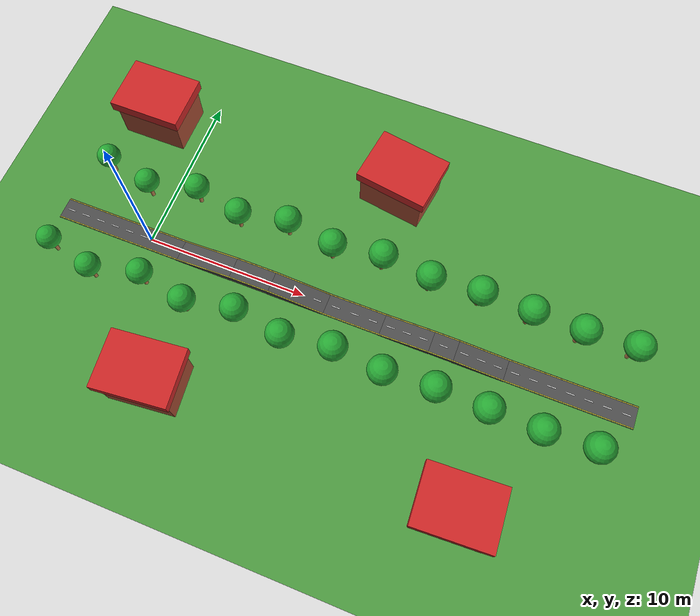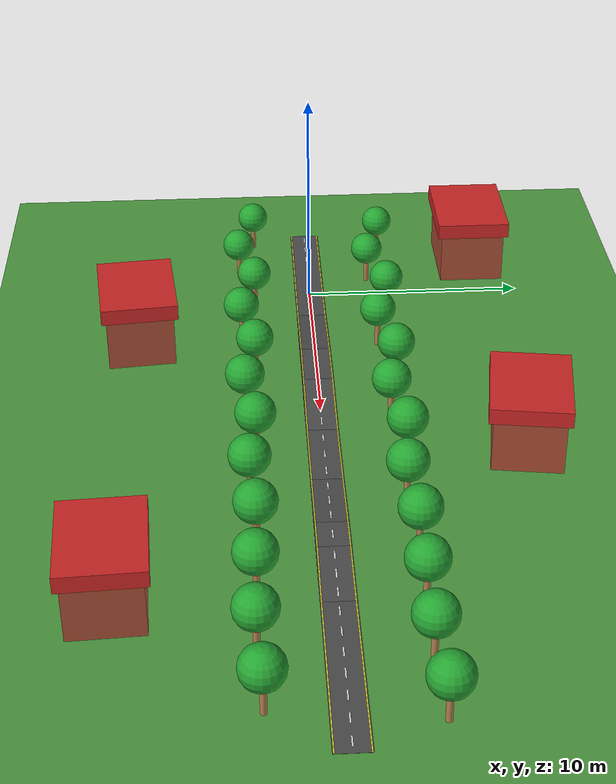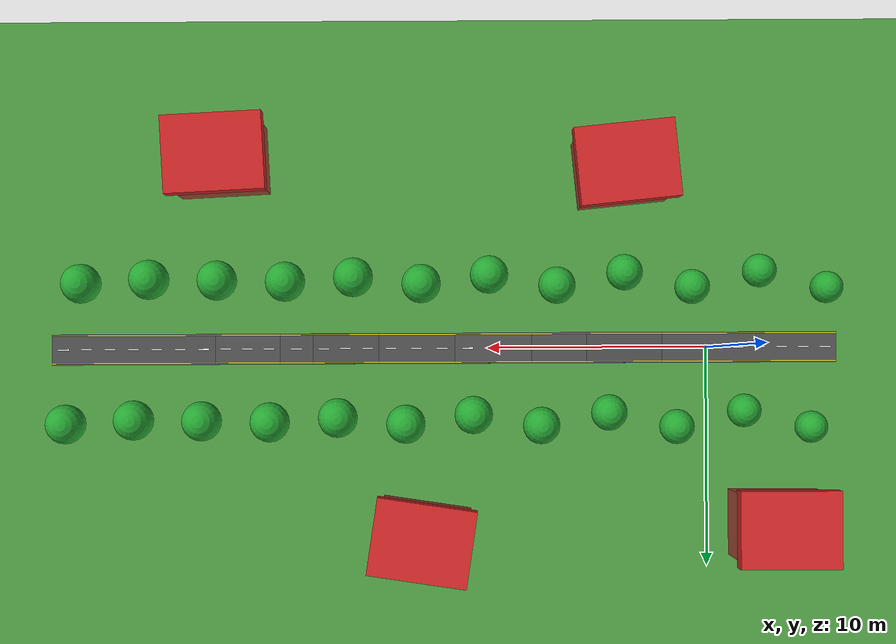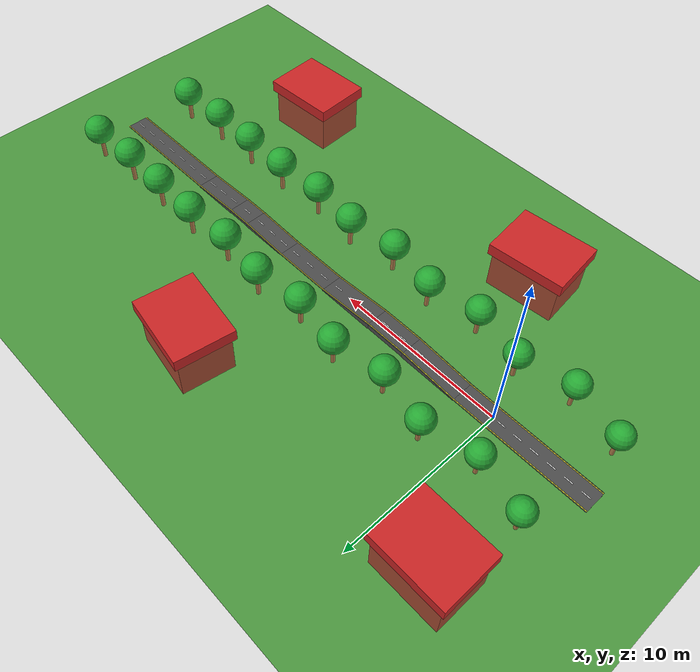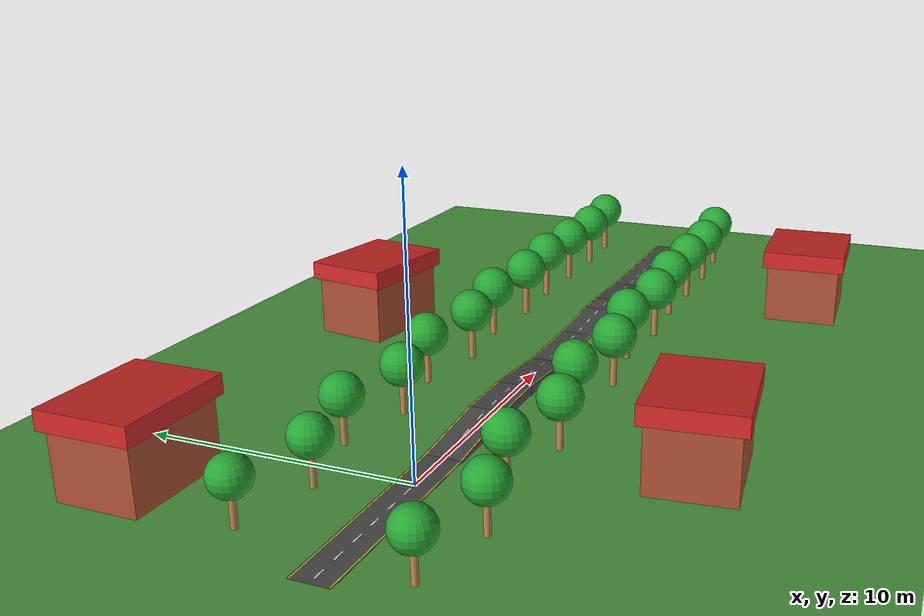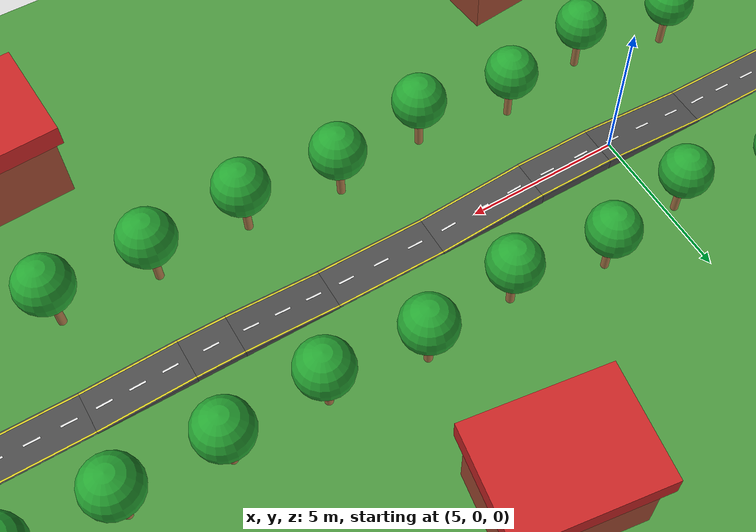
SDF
<?xml version="1.0"?>
<!-- GENERATED by make_road_world.py - edit that file, not this one -->
<sdf version="1.6">
  <world name="road_hills">
    <physics type="ode">
      <max_step_size>0.001</max_step_size>
      <real_time_factor>1</real_time_factor>
      <real_time_update_rate>1000</real_time_update_rate>
    </physics>
    <scene>
      <ambient>0.5 0.5 0.5 1</ambient>
      <background>0.6 0.75 0.95 1</background>
      <shadows>true</shadows>
      <sky><clouds><speed>4</speed></clouds></sky>
    </scene>
    <light type="directional" name="sun">
      <cast_shadows>true</cast_shadows>
      <pose>0 0 30 0 0 0</pose>
      <diffuse>0.9 0.9 0.85 1</diffuse>
      <specular>0.2 0.2 0.2 1</specular>
      <direction>-0.4 0.3 -0.85</direction>
    </light>
    <model name="grass">
      <static>true</static>
      <link name="l">
        <collision name="c"><geometry><plane><normal>0 0 1</normal><size>200 200</size></plane></geometry>
          <surface><friction><ode><mu>1.0</mu><mu2>1.0</mu2></ode></friction></surface></collision>
        <visual name="v"><cast_shadows>false</cast_shadows><geometry><plane><normal>0 0 1</normal><size>200 200</size></plane></geometry>
          <material><script><uri>file://media/materials/scripts/gazebo.material</uri><name>Gazebo/Grass</name></script></material></visual>
      </link>
    </model>
<model name="road_0"><static>true</static><pose>-2.0000 0.0000 0.0050 0.0000 0.0000 0.0000</pose><link name="l"><collision name="c"><geometry><box><size>8.0000 1.4000 0.0100</size></box></geometry><surface><friction><ode><mu>1.0</mu><mu2>1.0</mu2></ode></friction></surface></collision><visual name="v"><cast_shadows>true</cast_shadows><geometry><box><size>8.0000 1.4000 0.0100</size></box></geometry><material><script><uri>file://media/materials/scripts/gazebo.material</uri><name>Gazebo/Road</name></script></material></visual></link></model>
<model name="dash_0_0"><static>true</static><pose>-5.5000 0.0000 0.0120 0.0000 -0.0000 0.0000</pose><link name="l"><visual name="v"><cast_shadows>false</cast_shadows><geometry><box><size>0.5000 0.0600 0.0020</size></box></geometry><material><script><uri>file://media/materials/scripts/gazebo.material</uri><name>Gazebo/White</name></script></material></visual></link></model>
<model name="dash_0_1"><static>true</static><pose>-4.5000 0.0000 0.0120 0.0000 -0.0000 0.0000</pose><link name="l"><visual name="v"><cast_shadows>false</cast_shadows><geometry><box><size>0.5000 0.0600 0.0020</size></box></geometry><material><script><uri>file://media/materials/scripts/gazebo.material</uri><name>Gazebo/White</name></script></material></visual></link></model>
<model name="dash_0_2"><static>true</static><pose>-3.5000 0.0000 0.0120 0.0000 -0.0000 0.0000</pose><link name="l"><visual name="v"><cast_shadows>false</cast_shadows><geometry><box><size>0.5000 0.0600 0.0020</size></box></geometry><material><script><uri>file://media/materials/scripts/gazebo.material</uri><name>Gazebo/White</name></script></material></visual></link></model>
<model name="dash_0_3"><static>true</static><pose>-2.5000 0.0000 0.0120 0.0000 -0.0000 0.0000</pose><link name="l"><visual name="v"><cast_shadows>false</cast_shadows><geometry><box><size>0.5000 0.0600 0.0020</size></box></geometry><material><script><uri>file://media/materials/scripts/gazebo.material</uri><name>Gazebo/White</name></script></material></visual></link></model>
<model name="dash_0_4"><static>true</static><pose>-1.5000 0.0000 0.0120 0.0000 -0.0000 0.0000</pose><link name="l"><visual name="v"><cast_shadows>false</cast_shadows><geometry><box><size>0.5000 0.0600 0.0020</size></box></geometry><material><script><uri>file://media/materials/scripts/gazebo.material</uri><name>Gazebo/White</name></script></material></visual></link></model>
<model name="dash_0_5"><static>true</static><pose>-0.5000 0.0000 0.0120 0.0000 -0.0000 0.0000</pose><link name="l"><visual name="v"><cast_shadows>false</cast_shadows><geometry><box><size>0.5000 0.0600 0.0020</size></box></geometry><material><script><uri>file://media/materials/scripts/gazebo.material</uri><name>Gazebo/White</name></script></material></visual></link></model>
<model name="dash_0_6"><static>true</static><pose>0.5000 0.0000 0.0120 0.0000 -0.0000 0.0000</pose><link name="l"><visual name="v"><cast_shadows>false</cast_shadows><geometry><box><size>0.5000 0.0600 0.0020</size></box></geometry><material><script><uri>file://media/materials/scripts/gazebo.material</uri><name>Gazebo/White</name></script></material></visual></link></model>
<model name="dash_0_7"><static>true</static><pose>1.5000 0.0000 0.0120 0.0000 -0.0000 0.0000</pose><link name="l"><visual name="v"><cast_shadows>false</cast_shadows><geometry><box><size>0.5000 0.0600 0.0020</size></box></geometry><material><script><uri>file://media/materials/scripts/gazebo.material</uri><name>Gazebo/White</name></script></material></visual></link></model>
<model name="edge_0_l"><static>true</static><pose>-2.0000 0.6400 0.0120 0.0000 -0.0000 0.0000</pose><link name="l"><visual name="v"><cast_shadows>false</cast_shadows><geometry><box><size>8.0000 0.0500 0.0020</size></box></geometry><material><script><uri>file://media/materials/scripts/gazebo.material</uri><name>Gazebo/Yellow</name></script></material></visual></link></model>
<model name="edge_0_r"><static>true</static><pose>-2.0000 -0.6400 0.0120 0.0000 -0.0000 0.0000</pose><link name="l"><visual name="v"><cast_shadows>false</cast_shadows><geometry><box><size>8.0000 0.0500 0.0020</size></box></geometry><material><script><uri>file://media/materials/scripts/gazebo.material</uri><name>Gazebo/Yellow</name></script></material></visual></link></model>
<model name="road_1"><static>true</static><pose>3.7674 0.0000 -0.0362 0.0000 -0.0872 0.0000</pose><link name="l"><collision name="c"><geometry><box><size>3.5134 1.4000 0.4000</size></box></geometry><surface><friction><ode><mu>1.0</mu><mu2>1.0</mu2></ode></friction></surface></collision><visual name="v"><cast_shadows>true</cast_shadows><geometry><box><size>3.5134 1.4000 0.4000</size></box></geometry><material><script><uri>file://media/materials/scripts/gazebo.material</uri><name>Gazebo/Road</name></script></material></visual></link></model>
<model name="dash_1_0"><static>true</static><pose>2.5833 0.0000 0.0630 0.0000 -0.0872 0.0000</pose><link name="l"><visual name="v"><cast_shadows>false</cast_shadows><geometry><box><size>0.5000 0.0600 0.0020</size></box></geometry><material><script><uri>file://media/materials/scripts/gazebo.material</uri><name>Gazebo/White</name></script></material></visual></link></model>
<model name="dash_1_1"><static>true</static><pose>3.7500 0.0000 0.1650 0.0000 -0.0872 0.0000</pose><link name="l"><visual name="v"><cast_shadows>false</cast_shadows><geometry><box><size>0.5000 0.0600 0.0020</size></box></geometry><material><script><uri>file://media/materials/scripts/gazebo.material</uri><name>Gazebo/White</name></script></material></visual></link></model>
<model name="dash_1_2"><static>true</static><pose>4.9167 0.0000 0.2670 0.0000 -0.0872 0.0000</pose><link name="l"><visual name="v"><cast_shadows>false</cast_shadows><geometry><box><size>0.5000 0.0600 0.0020</size></box></geometry><material><script><uri>file://media/materials/scripts/gazebo.material</uri><name>Gazebo/White</name></script></material></visual></link></model>
<model name="edge_1_l"><static>true</static><pose>3.7500 0.6400 0.1650 0.0000 -0.0872 0.0000</pose><link name="l"><visual name="v"><cast_shadows>false</cast_shadows><geometry><box><size>3.5134 0.0500 0.0020</size></box></geometry><material><script><uri>file://media/materials/scripts/gazebo.material</uri><name>Gazebo/Yellow</name></script></material></visual></link></model>
<model name="edge_1_r"><static>true</static><pose>3.7500 -0.6400 0.1650 0.0000 -0.0872 0.0000</pose><link name="l"><visual name="v"><cast_shadows>false</cast_shadows><geometry><box><size>3.5134 0.0500 0.0020</size></box></geometry><material><script><uri>file://media/materials/scripts/gazebo.material</uri><name>Gazebo/Yellow</name></script></material></visual></link></model>
<model name="road_2"><static>true</static><pose>6.7500 0.0000 0.1580 0.0000 0.0000 0.0000</pose><link name="l"><collision name="c"><geometry><box><size>2.5000 1.4000 0.3160</size></box></geometry><surface><friction><ode><mu>1.0</mu><mu2>1.0</mu2></ode></friction></surface></collision><visual name="v"><cast_shadows>true</cast_shadows><geometry><box><size>2.5000 1.4000 0.3160</size></box></geometry><material><script><uri>file://media/materials/scripts/gazebo.material</uri><name>Gazebo/Road</name></script></material></visual></link></model>
<model name="dash_2_0"><static>true</static><pose>6.1250 0.0000 0.3180 0.0000 -0.0000 0.0000</pose><link name="l"><visual name="v"><cast_shadows>false</cast_shadows><geometry><box><size>0.5000 0.0600 0.0020</size></box></geometry><material><script><uri>file://media/materials/scripts/gazebo.material</uri><name>Gazebo/White</name></script></material></visual></link></model>
<model name="dash_2_1"><static>true</static><pose>7.3750 0.0000 0.3180 0.0000 -0.0000 0.0000</pose><link name="l"><visual name="v"><cast_shadows>false</cast_shadows><geometry><box><size>0.5000 0.0600 0.0020</size></box></geometry><material><script><uri>file://media/materials/scripts/gazebo.material</uri><name>Gazebo/White</name></script></material></visual></link></model>
<model name="edge_2_l"><static>true</static><pose>6.7500 0.6400 0.3180 0.0000 -0.0000 0.0000</pose><link name="l"><visual name="v"><cast_shadows>false</cast_shadows><geometry><box><size>2.5000 0.0500 0.0020</size></box></geometry><material><script><uri>file://media/materials/scripts/gazebo.material</uri><name>Gazebo/Yellow</name></script></material></visual></link></model>
<model name="edge_2_r"><static>true</static><pose>6.7500 -0.6400 0.3180 0.0000 -0.0000 0.0000</pose><link name="l"><visual name="v"><cast_shadows>false</cast_shadows><geometry><box><size>2.5000 0.0500 0.0020</size></box></geometry><material><script><uri>file://media/materials/scripts/gazebo.material</uri><name>Gazebo/Yellow</name></script></material></visual></link></model>
<model name="road_3"><static>true</static><pose>9.7326 0.0000 -0.0362 0.0000 0.0872 0.0000</pose><link name="l"><collision name="c"><geometry><box><size>3.5134 1.4000 0.4000</size></box></geometry><surface><friction><ode><mu>1.0</mu><mu2>1.0</mu2></ode></friction></surface></collision><visual name="v"><cast_shadows>true</cast_shadows><geometry><box><size>3.5134 1.4000 0.4000</size></box></geometry><material><script><uri>file://media/materials/scripts/gazebo.material</uri><name>Gazebo/Road</name></script></material></visual></link></model>
<model name="dash_3_0"><static>true</static><pose>8.5833 0.0000 0.2670 0.0000 0.0872 0.0000</pose><link name="l"><visual name="v"><cast_shadows>false</cast_shadows><geometry><box><size>0.5000 0.0600 0.0020</size></box></geometry><material><script><uri>file://media/materials/scripts/gazebo.material</uri><name>Gazebo/White</name></script></material></visual></link></model>
<model name="dash_3_1"><static>true</static><pose>9.7500 0.0000 0.1650 0.0000 0.0872 0.0000</pose><link name="l"><visual name="v"><cast_shadows>false</cast_shadows><geometry><box><size>0.5000 0.0600 0.0020</size></box></geometry><material><script><uri>file://media/materials/scripts/gazebo.material</uri><name>Gazebo/White</name></script></material></visual></link></model>
<model name="dash_3_2"><static>true</static><pose>10.9167 0.0000 0.0630 0.0000 0.0872 0.0000</pose><link name="l"><visual name="v"><cast_shadows>false</cast_shadows><geometry><box><size>0.5000 0.0600 0.0020</size></box></geometry><material><script><uri>file://media/materials/scripts/gazebo.material</uri><name>Gazebo/White</name></script></material></visual></link></model>
<model name="edge_3_l"><static>true</static><pose>9.7500 0.6400 0.1650 0.0000 0.0872 0.0000</pose><link name="l"><visual name="v"><cast_shadows>false</cast_shadows><geometry><box><size>3.5134 0.0500 0.0020</size></box></geometry><material><script><uri>file://media/materials/scripts/gazebo.material</uri><name>Gazebo/Yellow</name></script></material></visual></link></model>
<model name="edge_3_r"><static>true</static><pose>9.7500 -0.6400 0.1650 0.0000 0.0872 0.0000</pose><link name="l"><visual name="v"><cast_shadows>false</cast_shadows><geometry><box><size>3.5134 0.0500 0.0020</size></box></geometry><material><script><uri>file://media/materials/scripts/gazebo.material</uri><name>Gazebo/Yellow</name></script></material></visual></link></model>
<model name="road_4"><static>true</static><pose>13.2500 0.0000 0.0050 0.0000 0.0000 0.0000</pose><link name="l"><collision name="c"><geometry><box><size>3.5000 1.4000 0.0100</size></box></geometry><surface><friction><ode><mu>1.0</mu><mu2>1.0</mu2></ode></friction></surface></collision><visual name="v"><cast_shadows>true</cast_shadows><geometry><box><size>3.5000 1.4000 0.0100</size></box></geometry><material><script><uri>file://media/materials/scripts/gazebo.material</uri><name>Gazebo/Road</name></script></material></visual></link></model>
<model name="dash_4_0"><static>true</static><pose>12.0833 0.0000 0.0120 0.0000 -0.0000 0.0000</pose><link name="l"><visual name="v"><cast_shadows>false</cast_shadows><geometry><box><size>0.5000 0.0600 0.0020</size></box></geometry><material><script><uri>file://media/materials/scripts/gazebo.material</uri><name>Gazebo/White</name></script></material></visual></link></model>
<model name="dash_4_1"><static>true</static><pose>13.2500 0.0000 0.0120 0.0000 -0.0000 0.0000</pose><link name="l"><visual name="v"><cast_shadows>false</cast_shadows><geometry><box><size>0.5000 0.0600 0.0020</size></box></geometry><material><script><uri>file://media/materials/scripts/gazebo.material</uri><name>Gazebo/White</name></script></material></visual></link></model>
<model name="dash_4_2"><static>true</static><pose>14.4167 0.0000 0.0120 0.0000 -0.0000 0.0000</pose><link name="l"><visual name="v"><cast_shadows>false</cast_shadows><geometry><box><size>0.5000 0.0600 0.0020</size></box></geometry><material><script><uri>file://media/materials/scripts/gazebo.material</uri><name>Gazebo/White</name></script></material></visual></link></model>
<model name="edge_4_l"><static>true</static><pose>13.2500 0.6400 0.0120 0.0000 -0.0000 0.0000</pose><link name="l"><visual name="v"><cast_shadows>false</cast_shadows><geometry><box><size>3.5000 0.0500 0.0020</size></box></geometry><material><script><uri>file://media/materials/scripts/gazebo.material</uri><name>Gazebo/Yellow</name></script></material></visual></link></model>
<model name="edge_4_r"><static>true</static><pose>13.2500 -0.6400 0.0120 0.0000 -0.0000 0.0000</pose><link name="l"><visual name="v"><cast_shadows>false</cast_shadows><geometry><box><size>3.5000 0.0500 0.0020</size></box></geometry><material><script><uri>file://media/materials/scripts/gazebo.material</uri><name>Gazebo/Yellow</name></script></material></visual></link></model>
<model name="road_5"><static>true</static><pose>16.5105 0.0000 -0.1112 0.0000 -0.0523 0.0000</pose><link name="l"><collision name="c"><geometry><box><size>3.0041 1.4000 0.4000</size></box></geometry><surface><friction><ode><mu>1.0</mu><mu2>1.0</mu2></ode></friction></surface></collision><visual name="v"><cast_shadows>true</cast_shadows><geometry><box><size>3.0041 1.4000 0.4000</size></box></geometry><material><script><uri>file://media/materials/scripts/gazebo.material</uri><name>Gazebo/Road</name></script></material></visual></link></model>
<model name="dash_5_0"><static>true</static><pose>15.5000 0.0000 0.0382 0.0000 -0.0523 0.0000</pose><link name="l"><visual name="v"><cast_shadows>false</cast_shadows><geometry><box><size>0.5000 0.0600 0.0020</size></box></geometry><material><script><uri>file://media/materials/scripts/gazebo.material</uri><name>Gazebo/White</name></script></material></visual></link></model>
<model name="dash_5_1"><static>true</static><pose>16.5000 0.0000 0.0905 0.0000 -0.0523 0.0000</pose><link name="l"><visual name="v"><cast_shadows>false</cast_shadows><geometry><box><size>0.5000 0.0600 0.0020</size></box></geometry><material><script><uri>file://media/materials/scripts/gazebo.material</uri><name>Gazebo/White</name></script></material></visual></link></model>
<model name="dash_5_2"><static>true</static><pose>17.5000 0.0000 0.1428 0.0000 -0.0523 0.0000</pose><link name="l"><visual name="v"><cast_shadows>false</cast_shadows><geometry><box><size>0.5000 0.0600 0.0020</size></box></geometry><material><script><uri>file://media/materials/scripts/gazebo.material</uri><name>Gazebo/White</name></script></material></visual></link></model>
<model name="edge_5_l"><static>true</static><pose>16.5000 0.6400 0.0905 0.0000 -0.0523 0.0000</pose><link name="l"><visual name="v"><cast_shadows>false</cast_shadows><geometry><box><size>3.0041 0.0500 0.0020</size></box></geometry><material><script><uri>file://media/materials/scripts/gazebo.material</uri><name>Gazebo/Yellow</name></script></material></visual></link></model>
<model name="edge_5_r"><static>true</static><pose>16.5000 -0.6400 0.0905 0.0000 -0.0523 0.0000</pose><link name="l"><visual name="v"><cast_shadows>false</cast_shadows><geometry><box><size>3.0041 0.0500 0.0020</size></box></geometry><material><script><uri>file://media/materials/scripts/gazebo.material</uri><name>Gazebo/Yellow</name></script></material></visual></link></model>
<model name="road_6"><static>true</static><pose>18.7500 0.0000 0.0835 0.0000 0.0000 0.0000</pose><link name="l"><collision name="c"><geometry><box><size>1.5000 1.4000 0.1670</size></box></geometry><surface><friction><ode><mu>1.0</mu><mu2>1.0</mu2></ode></friction></surface></collision><visual name="v"><cast_shadows>true</cast_shadows><geometry><box><size>1.5000 1.4000 0.1670</size></box></geometry><material><script><uri>file://media/materials/scripts/gazebo.material</uri><name>Gazebo/Road</name></script></material></visual></link></model>
<model name="dash_6_0"><static>true</static><pose>18.7500 0.0000 0.1690 0.0000 -0.0000 0.0000</pose><link name="l"><visual name="v"><cast_shadows>false</cast_shadows><geometry><box><size>0.5000 0.0600 0.0020</size></box></geometry><material><script><uri>file://media/materials/scripts/gazebo.material</uri><name>Gazebo/White</name></script></material></visual></link></model>
<model name="edge_6_l"><static>true</static><pose>18.7500 0.6400 0.1690 0.0000 -0.0000 0.0000</pose><link name="l"><visual name="v"><cast_shadows>false</cast_shadows><geometry><box><size>1.5000 0.0500 0.0020</size></box></geometry><material><script><uri>file://media/materials/scripts/gazebo.material</uri><name>Gazebo/Yellow</name></script></material></visual></link></model>
<model name="edge_6_r"><static>true</static><pose>18.7500 -0.6400 0.1690 0.0000 -0.0000 0.0000</pose><link name="l"><visual name="v"><cast_shadows>false</cast_shadows><geometry><box><size>1.5000 0.0500 0.0020</size></box></geometry><material><script><uri>file://media/materials/scripts/gazebo.material</uri><name>Gazebo/Yellow</name></script></material></visual></link></model>
<model name="road_7"><static>true</static><pose>20.9895 0.0000 -0.1112 0.0000 0.0523 0.0000</pose><link name="l"><collision name="c"><geometry><box><size>3.0041 1.4000 0.4000</size></box></geometry><surface><friction><ode><mu>1.0</mu><mu2>1.0</mu2></ode></friction></surface></collision><visual name="v"><cast_shadows>true</cast_shadows><geometry><box><size>3.0041 1.4000 0.4000</size></box></geometry><material><script><uri>file://media/materials/scripts/gazebo.material</uri><name>Gazebo/Road</name></script></material></visual></link></model>
<model name="dash_7_0"><static>true</static><pose>20.0000 0.0000 0.1428 0.0000 0.0523 0.0000</pose><link name="l"><visual name="v"><cast_shadows>false</cast_shadows><geometry><box><size>0.5000 0.0600 0.0020</size></box></geometry><material><script><uri>file://media/materials/scripts/gazebo.material</uri><name>Gazebo/White</name></script></material></visual></link></model>
<model name="dash_7_1"><static>true</static><pose>21.0000 0.0000 0.0905 0.0000 0.0523 0.0000</pose><link name="l"><visual name="v"><cast_shadows>false</cast_shadows><geometry><box><size>0.5000 0.0600 0.0020</size></box></geometry><material><script><uri>file://media/materials/scripts/gazebo.material</uri><name>Gazebo/White</name></script></material></visual></link></model>
<model name="dash_7_2"><static>true</static><pose>22.0000 0.0000 0.0382 0.0000 0.0523 0.0000</pose><link name="l"><visual name="v"><cast_shadows>false</cast_shadows><geometry><box><size>0.5000 0.0600 0.0020</size></box></geometry><material><script><uri>file://media/materials/scripts/gazebo.material</uri><name>Gazebo/White</name></script></material></visual></link></model>
<model name="edge_7_l"><static>true</static><pose>21.0000 0.6400 0.0905 0.0000 0.0523 0.0000</pose><link name="l"><visual name="v"><cast_shadows>false</cast_shadows><geometry><box><size>3.0041 0.0500 0.0020</size></box></geometry><material><script><uri>file://media/materials/scripts/gazebo.material</uri><name>Gazebo/Yellow</name></script></material></visual></link></model>
<model name="edge_7_r"><static>true</static><pose>21.0000 -0.6400 0.0905 0.0000 0.0523 0.0000</pose><link name="l"><visual name="v"><cast_shadows>false</cast_shadows><geometry><box><size>3.0041 0.0500 0.0020</size></box></geometry><material><script><uri>file://media/materials/scripts/gazebo.material</uri><name>Gazebo/Yellow</name></script></material></visual></link></model>
<model name="road_8"><static>true</static><pose>26.2500 0.0000 0.0050 0.0000 0.0000 0.0000</pose><link name="l"><collision name="c"><geometry><box><size>7.5000 1.4000 0.0100</size></box></geometry><surface><friction><ode><mu>1.0</mu><mu2>1.0</mu2></ode></friction></surface></collision><visual name="v"><cast_shadows>true</cast_shadows><geometry><box><size>7.5000 1.4000 0.0100</size></box></geometry><material><script><uri>file://media/materials/scripts/gazebo.material</uri><name>Gazebo/Road</name></script></material></visual></link></model>
<model name="dash_8_0"><static>true</static><pose>23.0357 0.0000 0.0120 0.0000 -0.0000 0.0000</pose><link name="l"><visual name="v"><cast_shadows>false</cast_shadows><geometry><box><size>0.5000 0.0600 0.0020</size></box></geometry><material><script><uri>file://media/materials/scripts/gazebo.material</uri><name>Gazebo/White</name></script></material></visual></link></model>
<model name="dash_8_1"><static>true</static><pose>24.1071 0.0000 0.0120 0.0000 -0.0000 0.0000</pose><link name="l"><visual name="v"><cast_shadows>false</cast_shadows><geometry><box><size>0.5000 0.0600 0.0020</size></box></geometry><material><script><uri>file://media/materials/scripts/gazebo.material</uri><name>Gazebo/White</name></script></material></visual></link></model>
<model name="dash_8_2"><static>true</static><pose>25.1786 0.0000 0.0120 0.0000 -0.0000 0.0000</pose><link name="l"><visual name="v"><cast_shadows>false</cast_shadows><geometry><box><size>0.5000 0.0600 0.0020</size></box></geometry><material><script><uri>file://media/materials/scripts/gazebo.material</uri><name>Gazebo/White</name></script></material></visual></link></model>
<model name="dash_8_3"><static>true</static><pose>26.2500 0.0000 0.0120 0.0000 -0.0000 0.0000</pose><link name="l"><visual name="v"><cast_shadows>false</cast_shadows><geometry><box><size>0.5000 0.0600 0.0020</size></box></geometry><material><script><uri>file://media/materials/scripts/gazebo.material</uri><name>Gazebo/White</name></script></material></visual></link></model>
<model name="dash_8_4"><static>true</static><pose>27.3214 0.0000 0.0120 0.0000 -0.0000 0.0000</pose><link name="l"><visual name="v"><cast_shadows>false</cast_shadows><geometry><box><size>0.5000 0.0600 0.0020</size></box></geometry><material><script><uri>file://media/materials/scripts/gazebo.material</uri><name>Gazebo/White</name></script></material></visual></link></model>
<model name="dash_8_5"><static>true</static><pose>28.3929 0.0000 0.0120 0.0000 -0.0000 0.0000</pose><link name="l"><visual name="v"><cast_shadows>false</cast_shadows><geometry><box><size>0.5000 0.0600 0.0020</size></box></geometry><material><script><uri>file://media/materials/scripts/gazebo.material</uri><name>Gazebo/White</name></script></material></visual></link></model>
<model name="dash_8_6"><static>true</static><pose>29.4643 0.0000 0.0120 0.0000 -0.0000 0.0000</pose><link name="l"><visual name="v"><cast_shadows>false</cast_shadows><geometry><box><size>0.5000 0.0600 0.0020</size></box></geometry><material><script><uri>file://media/materials/scripts/gazebo.material</uri><name>Gazebo/White</name></script></material></visual></link></model>
<model name="edge_8_l"><static>true</static><pose>26.2500 0.6400 0.0120 0.0000 -0.0000 0.0000</pose><link name="l"><visual name="v"><cast_shadows>false</cast_shadows><geometry><box><size>7.5000 0.0500 0.0020</size></box></geometry><material><script><uri>file://media/materials/scripts/gazebo.material</uri><name>Gazebo/Yellow</name></script></material></visual></link></model>
<model name="edge_8_r"><static>true</static><pose>26.2500 -0.6400 0.0120 0.0000 -0.0000 0.0000</pose><link name="l"><visual name="v"><cast_shadows>false</cast_shadows><geometry><box><size>7.5000 0.0500 0.0020</size></box></geometry><material><script><uri>file://media/materials/scripts/gazebo.material</uri><name>Gazebo/Yellow</name></script></material></visual></link></model>
<model name="tree_0"><static>true</static><pose>-5.00 -2.62 0 0 0 0</pose><link name="l"><collision name="c"><pose>0 0 0.66 0 0 0</pose><geometry><cylinder><radius>0.11</radius><length>1.33</length></cylinder></geometry></collision><visual name="trunk"><pose>0 0 0.66 0 0 0</pose><geometry><cylinder><radius>0.11</radius><length>1.33</length></cylinder></geometry><material><script><uri>file://media/materials/scripts/gazebo.material</uri><name>Gazebo/Wood</name></script></material></visual><visual name="leaves"><pose>0 0 1.68 0 0 0</pose><geometry><sphere><radius>0.71</radius></sphere></geometry><material><script><uri>file://media/materials/scripts/gazebo.material</uri><name>Gazebo/Green</name></script></material></visual></link></model>
<model name="tree_1"><static>true</static><pose>-4.30 3.58 0 0 0 0</pose><link name="l"><collision name="c"><pose>0 0 0.66 0 0 0</pose><geometry><cylinder><radius>0.11</radius><length>1.33</length></cylinder></geometry></collision><visual name="trunk"><pose>0 0 0.66 0 0 0</pose><geometry><cylinder><radius>0.11</radius><length>1.33</length></cylinder></geometry><material><script><uri>file://media/materials/scripts/gazebo.material</uri><name>Gazebo/Wood</name></script></material></visual><visual name="leaves"><pose>0 0 1.68 0 0 0</pose><geometry><sphere><radius>0.71</radius></sphere></geometry><material><script><uri>file://media/materials/scripts/gazebo.material</uri><name>Gazebo/Green</name></script></material></visual></link></model>
<model name="tree_2"><static>true</static><pose>-2.00 -3.36 0 0 0 0</pose><link name="l"><collision name="c"><pose>0 0 0.69 0 0 0</pose><geometry><cylinder><radius>0.11</radius><length>1.39</length></cylinder></geometry></collision><visual name="trunk"><pose>0 0 0.69 0 0 0</pose><geometry><cylinder><radius>0.11</radius><length>1.39</length></cylinder></geometry><material><script><uri>file://media/materials/scripts/gazebo.material</uri><name>Gazebo/Wood</name></script></material></visual><visual name="leaves"><pose>0 0 1.76 0 0 0</pose><geometry><sphere><radius>0.74</radius></sphere></geometry><material><script><uri>file://media/materials/scripts/gazebo.material</uri><name>Gazebo/Green</name></script></material></visual></link></model>
<model name="tree_3"><static>true</static><pose>-1.30 2.84 0 0 0 0</pose><link name="l"><collision name="c"><pose>0 0 0.69 0 0 0</pose><geometry><cylinder><radius>0.11</radius><length>1.39</length></cylinder></geometry></collision><visual name="trunk"><pose>0 0 0.69 0 0 0</pose><geometry><cylinder><radius>0.11</radius><length>1.39</length></cylinder></geometry><material><script><uri>file://media/materials/scripts/gazebo.material</uri><name>Gazebo/Wood</name></script></material></visual><visual name="leaves"><pose>0 0 1.76 0 0 0</pose><geometry><sphere><radius>0.74</radius></sphere></geometry><material><script><uri>file://media/materials/scripts/gazebo.material</uri><name>Gazebo/Green</name></script></material></visual></link></model>
<model name="tree_4"><static>true</static><pose>1.00 -2.66 0 0 0 0</pose><link name="l"><collision name="c"><pose>0 0 0.72 0 0 0</pose><geometry><cylinder><radius>0.12</radius><length>1.44</length></cylinder></geometry></collision><visual name="trunk"><pose>0 0 0.72 0 0 0</pose><geometry><cylinder><radius>0.12</radius><length>1.44</length></cylinder></geometry><material><script><uri>file://media/materials/scripts/gazebo.material</uri><name>Gazebo/Wood</name></script></material></visual><visual name="leaves"><pose>0 0 1.83 0 0 0</pose><geometry><sphere><radius>0.77</radius></sphere></geometry><material><script><uri>file://media/materials/scripts/gazebo.material</uri><name>Gazebo/Green</name></script></material></visual></link></model>
<model name="tree_5"><static>true</static><pose>1.70 3.54 0 0 0 0</pose><link name="l"><collision name="c"><pose>0 0 0.72 0 0 0</pose><geometry><cylinder><radius>0.12</radius><length>1.44</length></cylinder></geometry></collision><visual name="trunk"><pose>0 0 0.72 0 0 0</pose><geometry><cylinder><radius>0.12</radius><length>1.44</length></cylinder></geometry><material><script><uri>file://media/materials/scripts/gazebo.material</uri><name>Gazebo/Wood</name></script></material></visual><visual name="leaves"><pose>0 0 1.83 0 0 0</pose><geometry><sphere><radius>0.77</radius></sphere></geometry><material><script><uri>file://media/materials/scripts/gazebo.material</uri><name>Gazebo/Green</name></script></material></visual></link></model>
<model name="tree_6"><static>true</static><pose>4.00 -3.30 0 0 0 0</pose><link name="l"><collision name="c"><pose>0 0 0.75 0 0 0</pose><geometry><cylinder><radius>0.12</radius><length>1.49</length></cylinder></geometry></collision><visual name="trunk"><pose>0 0 0.75 0 0 0</pose><geometry><cylinder><radius>0.12</radius><length>1.49</length></cylinder></geometry><material><script><uri>file://media/materials/scripts/gazebo.material</uri><name>Gazebo/Wood</name></script></material></visual><visual name="leaves"><pose>0 0 1.89 0 0 0</pose><geometry><sphere><radius>0.80</radius></sphere></geometry><material><script><uri>file://media/materials/scripts/gazebo.material</uri><name>Gazebo/Green</name></script></material></visual></link></model>
<model name="tree_7"><static>true</static><pose>4.70 2.90 0 0 0 0</pose><link name="l"><collision name="c"><pose>0 0 0.75 0 0 0</pose><geometry><cylinder><radius>0.12</radius><length>1.49</length></cylinder></geometry></collision><visual name="trunk"><pose>0 0 0.75 0 0 0</pose><geometry><cylinder><radius>0.12</radius><length>1.49</length></cylinder></geometry><material><script><uri>file://media/materials/scripts/gazebo.material</uri><name>Gazebo/Wood</name></script></material></visual><visual name="leaves"><pose>0 0 1.89 0 0 0</pose><geometry><sphere><radius>0.80</radius></sphere></geometry><material><script><uri>file://media/materials/scripts/gazebo.material</uri><name>Gazebo/Green</name></script></material></visual></link></model>
<model name="tree_8"><static>true</static><pose>7.00 -2.74 0 0 0 0</pose><link name="l"><collision name="c"><pose>0 0 0.77 0 0 0</pose><geometry><cylinder><radius>0.12</radius><length>1.54</length></cylinder></geometry></collision><visual name="trunk"><pose>0 0 0.77 0 0 0</pose><geometry><cylinder><radius>0.12</radius><length>1.54</length></cylinder></geometry><material><script><uri>file://media/materials/scripts/gazebo.material</uri><name>Gazebo/Wood</name></script></material></visual><visual name="leaves"><pose>0 0 1.95 0 0 0</pose><geometry><sphere><radius>0.82</radius></sphere></geometry><material><script><uri>file://media/materials/scripts/gazebo.material</uri><name>Gazebo/Green</name></script></material></visual></link></model>
<model name="tree_9"><static>true</static><pose>7.70 3.46 0 0 0 0</pose><link name="l"><collision name="c"><pose>0 0 0.77 0 0 0</pose><geometry><cylinder><radius>0.12</radius><length>1.54</length></cylinder></geometry></collision><visual name="trunk"><pose>0 0 0.77 0 0 0</pose><geometry><cylinder><radius>0.12</radius><length>1.54</length></cylinder></geometry><material><script><uri>file://media/materials/scripts/gazebo.material</uri><name>Gazebo/Wood</name></script></material></visual><visual name="leaves"><pose>0 0 1.95 0 0 0</pose><geometry><sphere><radius>0.82</radius></sphere></geometry><material><script><uri>file://media/materials/scripts/gazebo.material</uri><name>Gazebo/Green</name></script></material></visual></link></model>
<model name="tree_10"><static>true</static><pose>10.00 -3.22 0 0 0 0</pose><link name="l"><collision name="c"><pose>0 0 0.79 0 0 0</pose><geometry><cylinder><radius>0.13</radius><length>1.58</length></cylinder></geometry></collision><visual name="trunk"><pose>0 0 0.79 0 0 0</pose><geometry><cylinder><radius>0.13</radius><length>1.58</length></cylinder></geometry><material><script><uri>file://media/materials/scripts/gazebo.material</uri><name>Gazebo/Wood</name></script></material></visual><visual name="leaves"><pose>0 0 2.00 0 0 0</pose><geometry><sphere><radius>0.84</radius></sphere></geometry><material><script><uri>file://media/materials/scripts/gazebo.material</uri><name>Gazebo/Green</name></script></material></visual></link></model>
<model name="tree_11"><static>true</static><pose>10.70 2.98 0 0 0 0</pose><link name="l"><collision name="c"><pose>0 0 0.79 0 0 0</pose><geometry><cylinder><radius>0.13</radius><length>1.58</length></cylinder></geometry></collision><visual name="trunk"><pose>0 0 0.79 0 0 0</pose><geometry><cylinder><radius>0.13</radius><length>1.58</length></cylinder></geometry><material><script><uri>file://media/materials/scripts/gazebo.material</uri><name>Gazebo/Wood</name></script></material></visual><visual name="leaves"><pose>0 0 2.00 0 0 0</pose><geometry><sphere><radius>0.84</radius></sphere></geometry><material><script><uri>file://media/materials/scripts/gazebo.material</uri><name>Gazebo/Green</name></script></material></visual></link></model>
<model name="tree_12"><static>true</static><pose>13.00 -2.83 0 0 0 0</pose><link name="l"><collision name="c"><pose>0 0 0.80 0 0 0</pose><geometry><cylinder><radius>0.13</radius><length>1.61</length></cylinder></geometry></collision><visual name="trunk"><pose>0 0 0.80 0 0 0</pose><geometry><cylinder><radius>0.13</radius><length>1.61</length></cylinder></geometry><material><script><uri>file://media/materials/scripts/gazebo.material</uri><name>Gazebo/Wood</name></script></material></visual><visual name="leaves"><pose>0 0 2.04 0 0 0</pose><geometry><sphere><radius>0.86</radius></sphere></geometry><material><script><uri>file://media/materials/scripts/gazebo.material</uri><name>Gazebo/Green</name></script></material></visual></link></model>
<model name="tree_13"><static>true</static><pose>13.70 3.37 0 0 0 0</pose><link name="l"><collision name="c"><pose>0 0 0.80 0 0 0</pose><geometry><cylinder><radius>0.13</radius><length>1.61</length></cylinder></geometry></collision><visual name="trunk"><pose>0 0 0.80 0 0 0</pose><geometry><cylinder><radius>0.13</radius><length>1.61</length></cylinder></geometry><material><script><uri>file://media/materials/scripts/gazebo.material</uri><name>Gazebo/Wood</name></script></material></visual><visual name="leaves"><pose>0 0 2.04 0 0 0</pose><geometry><sphere><radius>0.86</radius></sphere></geometry><material><script><uri>file://media/materials/scripts/gazebo.material</uri><name>Gazebo/Green</name></script></material></visual></link></model>
<model name="tree_14"><static>true</static><pose>16.00 -3.12 0 0 0 0</pose><link name="l"><collision name="c"><pose>0 0 0.82 0 0 0</pose><geometry><cylinder><radius>0.13</radius><length>1.63</length></cylinder></geometry></collision><visual name="trunk"><pose>0 0 0.82 0 0 0</pose><geometry><cylinder><radius>0.13</radius><length>1.63</length></cylinder></geometry><material><script><uri>file://media/materials/scripts/gazebo.material</uri><name>Gazebo/Wood</name></script></material></visual><visual name="leaves"><pose>0 0 2.07 0 0 0</pose><geometry><sphere><radius>0.87</radius></sphere></geometry><material><script><uri>file://media/materials/scripts/gazebo.material</uri><name>Gazebo/Green</name></script></material></visual></link></model>
<model name="tree_15"><static>true</static><pose>16.70 3.08 0 0 0 0</pose><link name="l"><collision name="c"><pose>0 0 0.82 0 0 0</pose><geometry><cylinder><radius>0.13</radius><length>1.63</length></cylinder></geometry></collision><visual name="trunk"><pose>0 0 0.82 0 0 0</pose><geometry><cylinder><radius>0.13</radius><length>1.63</length></cylinder></geometry><material><script><uri>file://media/materials/scripts/gazebo.material</uri><name>Gazebo/Wood</name></script></material></visual><visual name="leaves"><pose>0 0 2.07 0 0 0</pose><geometry><sphere><radius>0.87</radius></sphere></geometry><material><script><uri>file://media/materials/scripts/gazebo.material</uri><name>Gazebo/Green</name></script></material></visual></link></model>
<model name="tree_16"><static>true</static><pose>19.00 -2.94 0 0 0 0</pose><link name="l"><collision name="c"><pose>0 0 0.82 0 0 0</pose><geometry><cylinder><radius>0.13</radius><length>1.64</length></cylinder></geometry></collision><visual name="trunk"><pose>0 0 0.82 0 0 0</pose><geometry><cylinder><radius>0.13</radius><length>1.64</length></cylinder></geometry><material><script><uri>file://media/materials/scripts/gazebo.material</uri><name>Gazebo/Wood</name></script></material></visual><visual name="leaves"><pose>0 0 2.08 0 0 0</pose><geometry><sphere><radius>0.88</radius></sphere></geometry><material><script><uri>file://media/materials/scripts/gazebo.material</uri><name>Gazebo/Green</name></script></material></visual></link></model>
<model name="tree_17"><static>true</static><pose>19.70 3.26 0 0 0 0</pose><link name="l"><collision name="c"><pose>0 0 0.82 0 0 0</pose><geometry><cylinder><radius>0.13</radius><length>1.64</length></cylinder></geometry></collision><visual name="trunk"><pose>0 0 0.82 0 0 0</pose><geometry><cylinder><radius>0.13</radius><length>1.64</length></cylinder></geometry><material><script><uri>file://media/materials/scripts/gazebo.material</uri><name>Gazebo/Wood</name></script></material></visual><visual name="leaves"><pose>0 0 2.08 0 0 0</pose><geometry><sphere><radius>0.88</radius></sphere></geometry><material><script><uri>file://media/materials/scripts/gazebo.material</uri><name>Gazebo/Green</name></script></material></visual></link></model>
<model name="tree_18"><static>true</static><pose>22.00 -3.00 0 0 0 0</pose><link name="l"><collision name="c"><pose>0 0 0.82 0 0 0</pose><geometry><cylinder><radius>0.13</radius><length>1.65</length></cylinder></geometry></collision><visual name="trunk"><pose>0 0 0.82 0 0 0</pose><geometry><cylinder><radius>0.13</radius><length>1.65</length></cylinder></geometry><material><script><uri>file://media/materials/scripts/gazebo.material</uri><name>Gazebo/Wood</name></script></material></visual><visual name="leaves"><pose>0 0 2.09 0 0 0</pose><geometry><sphere><radius>0.88</radius></sphere></geometry><material><script><uri>file://media/materials/scripts/gazebo.material</uri><name>Gazebo/Green</name></script></material></visual></link></model>
<model name="tree_19"><static>true</static><pose>22.70 3.20 0 0 0 0</pose><link name="l"><collision name="c"><pose>0 0 0.82 0 0 0</pose><geometry><cylinder><radius>0.13</radius><length>1.65</length></cylinder></geometry></collision><visual name="trunk"><pose>0 0 0.82 0 0 0</pose><geometry><cylinder><radius>0.13</radius><length>1.65</length></cylinder></geometry><material><script><uri>file://media/materials/scripts/gazebo.material</uri><name>Gazebo/Wood</name></script></material></visual><visual name="leaves"><pose>0 0 2.09 0 0 0</pose><geometry><sphere><radius>0.88</radius></sphere></geometry><material><script><uri>file://media/materials/scripts/gazebo.material</uri><name>Gazebo/Green</name></script></material></visual></link></model>
<model name="tree_20"><static>true</static><pose>25.00 -3.05 0 0 0 0</pose><link name="l"><collision name="c"><pose>0 0 0.82 0 0 0</pose><geometry><cylinder><radius>0.13</radius><length>1.65</length></cylinder></geometry></collision><visual name="trunk"><pose>0 0 0.82 0 0 0</pose><geometry><cylinder><radius>0.13</radius><length>1.65</length></cylinder></geometry><material><script><uri>file://media/materials/scripts/gazebo.material</uri><name>Gazebo/Wood</name></script></material></visual><visual name="leaves"><pose>0 0 2.08 0 0 0</pose><geometry><sphere><radius>0.88</radius></sphere></geometry><material><script><uri>file://media/materials/scripts/gazebo.material</uri><name>Gazebo/Green</name></script></material></visual></link></model>
<model name="tree_21"><static>true</static><pose>25.70 3.15 0 0 0 0</pose><link name="l"><collision name="c"><pose>0 0 0.82 0 0 0</pose><geometry><cylinder><radius>0.13</radius><length>1.65</length></cylinder></geometry></collision><visual name="trunk"><pose>0 0 0.82 0 0 0</pose><geometry><cylinder><radius>0.13</radius><length>1.65</length></cylinder></geometry><material><script><uri>file://media/materials/scripts/gazebo.material</uri><name>Gazebo/Wood</name></script></material></visual><visual name="leaves"><pose>0 0 2.08 0 0 0</pose><geometry><sphere><radius>0.88</radius></sphere></geometry><material><script><uri>file://media/materials/scripts/gazebo.material</uri><name>Gazebo/Green</name></script></material></visual></link></model>
<model name="tree_22"><static>true</static><pose>28.00 -2.89 0 0 0 0</pose><link name="l"><collision name="c"><pose>0 0 0.82 0 0 0</pose><geometry><cylinder><radius>0.13</radius><length>1.63</length></cylinder></geometry></collision><visual name="trunk"><pose>0 0 0.82 0 0 0</pose><geometry><cylinder><radius>0.13</radius><length>1.63</length></cylinder></geometry><material><script><uri>file://media/materials/scripts/gazebo.material</uri><name>Gazebo/Wood</name></script></material></visual><visual name="leaves"><pose>0 0 2.07 0 0 0</pose><geometry><sphere><radius>0.87</radius></sphere></geometry><material><script><uri>file://media/materials/scripts/gazebo.material</uri><name>Gazebo/Green</name></script></material></visual></link></model>
<model name="tree_23"><static>true</static><pose>28.70 3.31 0 0 0 0</pose><link name="l"><collision name="c"><pose>0 0 0.82 0 0 0</pose><geometry><cylinder><radius>0.13</radius><length>1.63</length></cylinder></geometry></collision><visual name="trunk"><pose>0 0 0.82 0 0 0</pose><geometry><cylinder><radius>0.13</radius><length>1.63</length></cylinder></geometry><material><script><uri>file://media/materials/scripts/gazebo.material</uri><name>Gazebo/Wood</name></script></material></visual><visual name="leaves"><pose>0 0 2.07 0 0 0</pose><geometry><sphere><radius>0.87</radius></sphere></geometry><material><script><uri>file://media/materials/scripts/gazebo.material</uri><name>Gazebo/Green</name></script></material></visual></link></model>
<model name="house_0"><static>true</static><pose>4.0000 -8.0000 1.2000 0.0000 0.0000 0.1000</pose><link name="l"><collision name="c"><geometry><box><size>4.0000 3.0000 2.4000</size></box></geometry><surface><friction><ode><mu>1.0</mu><mu2>1.0</mu2></ode></friction></surface></collision><visual name="v"><cast_shadows>true</cast_shadows><geometry><box><size>4.0000 3.0000 2.4000</size></box></geometry><material><script><uri>file://media/materials/scripts/gazebo.material</uri><name>Gazebo/Bricks</name></script></material></visual></link></model>
<model name="roof_0"><static>true</static><pose>4.0000 -8.0000 2.7500 0.0000 0.0000 0.1000</pose><link name="l"><collision name="c"><geometry><box><size>4.4000 3.4000 0.7000</size></box></geometry><surface><friction><ode><mu>1.0</mu><mu2>1.0</mu2></ode></friction></surface></collision><visual name="v"><cast_shadows>true</cast_shadows><geometry><box><size>4.4000 3.4000 0.7000</size></box></geometry><material><script><uri>file://media/materials/scripts/gazebo.material</uri><name>Gazebo/Red</name></script></material></visual></link></model>
<model name="house_1"><static>true</static><pose>13.0000 8.5000 1.2000 0.0000 0.0000 -0.1500</pose><link name="l"><collision name="c"><geometry><box><size>4.0000 3.0000 2.4000</size></box></geometry><surface><friction><ode><mu>1.0</mu><mu2>1.0</mu2></ode></friction></surface></collision><visual name="v"><cast_shadows>true</cast_shadows><geometry><box><size>4.0000 3.0000 2.4000</size></box></geometry><material><script><uri>file://media/materials/scripts/gazebo.material</uri><name>Gazebo/Bricks</name></script></material></visual></link></model>
<model name="roof_1"><static>true</static><pose>13.0000 8.5000 2.7500 0.0000 0.0000 -0.1500</pose><link name="l"><collision name="c"><geometry><box><size>4.4000 3.4000 0.7000</size></box></geometry><surface><friction><ode><mu>1.0</mu><mu2>1.0</mu2></ode></friction></surface></collision><visual name="v"><cast_shadows>true</cast_shadows><geometry><box><size>4.4000 3.4000 0.7000</size></box></geometry><material><script><uri>file://media/materials/scripts/gazebo.material</uri><name>Gazebo/Red</name></script></material></visual></link></model>
<model name="house_2"><static>true</static><pose>22.0000 -8.5000 1.2000 0.0000 0.0000 0.0500</pose><link name="l"><collision name="c"><geometry><box><size>4.0000 3.0000 2.4000</size></box></geometry><surface><friction><ode><mu>1.0</mu><mu2>1.0</mu2></ode></friction></surface></collision><visual name="v"><cast_shadows>true</cast_shadows><geometry><box><size>4.0000 3.0000 2.4000</size></box></geometry><material><script><uri>file://media/materials/scripts/gazebo.material</uri><name>Gazebo/Bricks</name></script></material></visual></link></model>
<model name="roof_2"><static>true</static><pose>22.0000 -8.5000 2.7500 0.0000 0.0000 0.0500</pose><link name="l"><collision name="c"><geometry><box><size>4.4000 3.4000 0.7000</size></box></geometry><surface><friction><ode><mu>1.0</mu><mu2>1.0</mu2></ode></friction></surface></collision><visual name="v"><cast_shadows>true</cast_shadows><geometry><box><size>4.4000 3.4000 0.7000</size></box></geometry><material><script><uri>file://media/materials/scripts/gazebo.material</uri><name>Gazebo/Red</name></script></material></visual></link></model>
<model name="house_3"><static>true</static><pose>-3.0000 8.0000 1.2000 0.0000 0.0000 0.0000</pose><link name="l"><collision name="c"><geometry><box><size>4.0000 3.0000 2.4000</size></box></geometry><surface><friction><ode><mu>1.0</mu><mu2>1.0</mu2></ode></friction></surface></collision><visual name="v"><cast_shadows>true</cast_shadows><geometry><box><size>4.0000 3.0000 2.4000</size></box></geometry><material><script><uri>file://media/materials/scripts/gazebo.material</uri><name>Gazebo/Bricks</name></script></material></visual></link></model>
<model name="roof_3"><static>true</static><pose>-3.0000 8.0000 2.7500 0.0000 0.0000 0.0000</pose><link name="l"><collision name="c"><geometry><box><size>4.4000 3.4000 0.7000</size></box></geometry><surface><friction><ode><mu>1.0</mu><mu2>1.0</mu2></ode></friction></surface></collision><visual name="v"><cast_shadows>true</cast_shadows><geometry><box><size>4.4000 3.4000 0.7000</size></box></geometry><material><script><uri>file://media/materials/scripts/gazebo.material</uri><name>Gazebo/Red</name></script></material></visual></link></model>
    <gui fullscreen="0">
      <camera name="user_camera">
        <pose>-2.2 -2.6 1.1 0 0.25 0.85</pose>
      </camera>
    </gui>
  </world>
</sdf>
